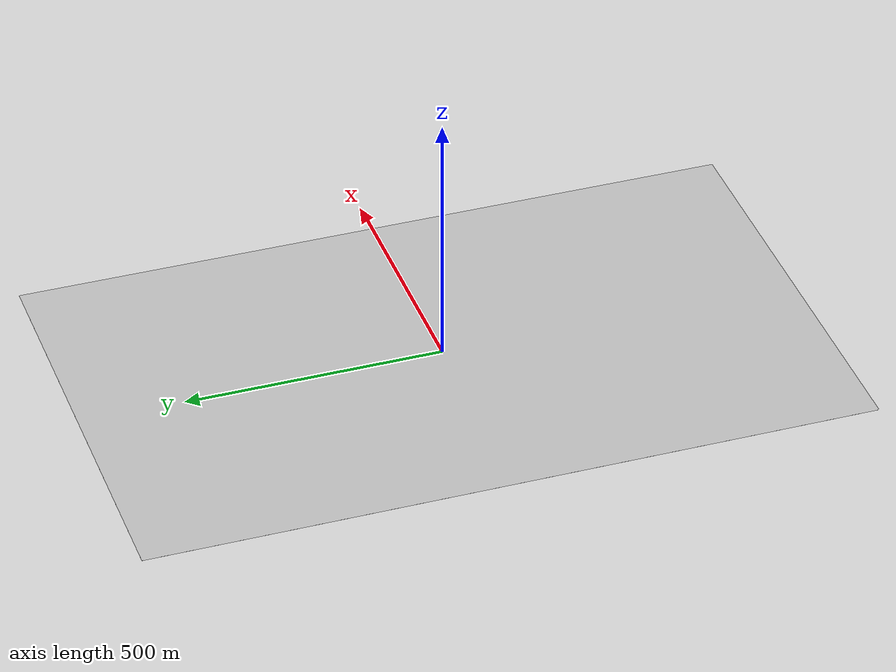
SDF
<?xml version="1.0" ?>
<sdf version="1.5">
  <model name="ATLAS_ground_mini">
    <static>true</static>
    <link name="floor">
      <collision name="collision">
        <geometry>
          <box>
            <size>855 1410 .1</size>
          </box>
        </geometry>
      </collision>
      <visual name="visual">
        <cast_shadows>false</cast_shadows>
        <geometry>
          <box>
            <size>855 1407 .1</size>
          </box>
        </geometry>
        <material>
          <script>
            <uri>model://ATLAS_ground_mini/materials/scripts</uri>
            <uri>model://ATLAS_ground_mini/materials/textures</uri>
            <name>ATLAS_ground_mini</name>
          </script>
        </material>
      </visual>
    </link>
  </model>
</sdf>
